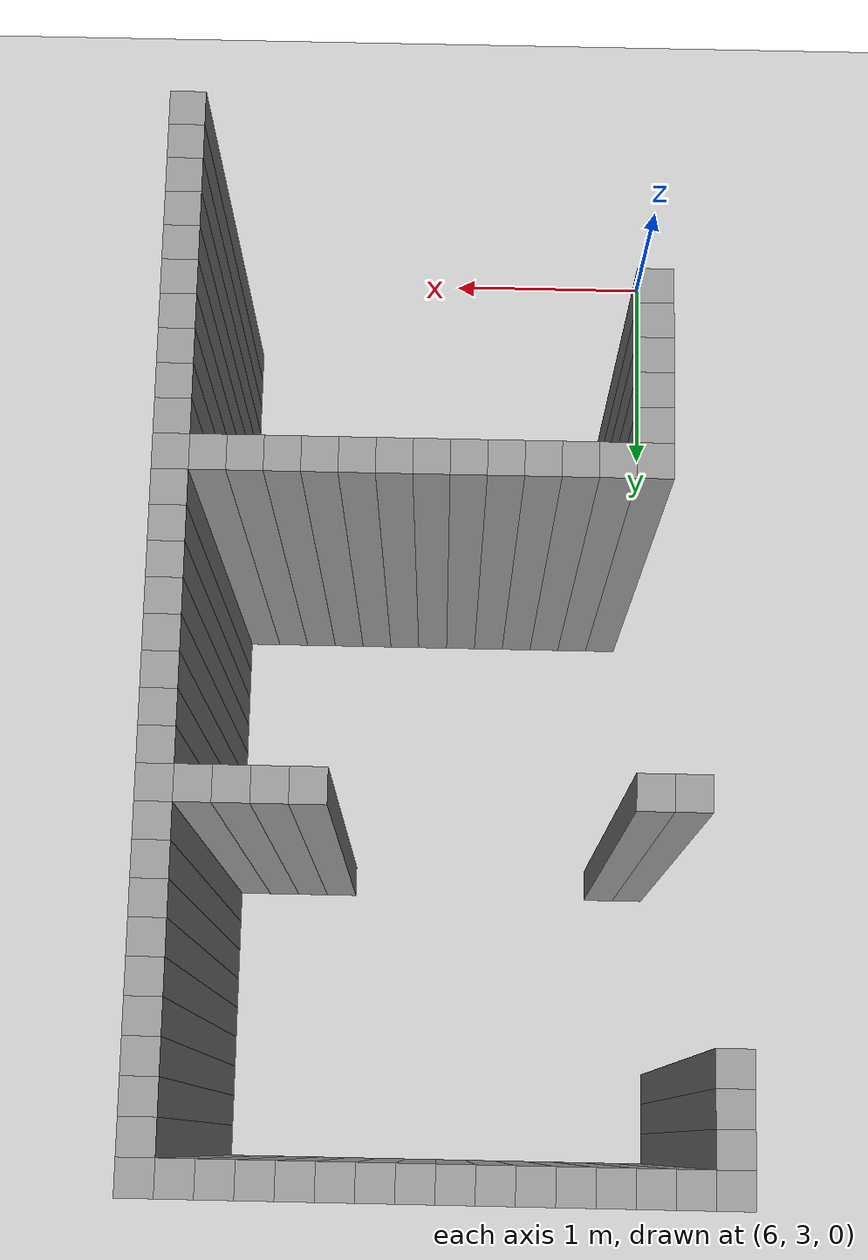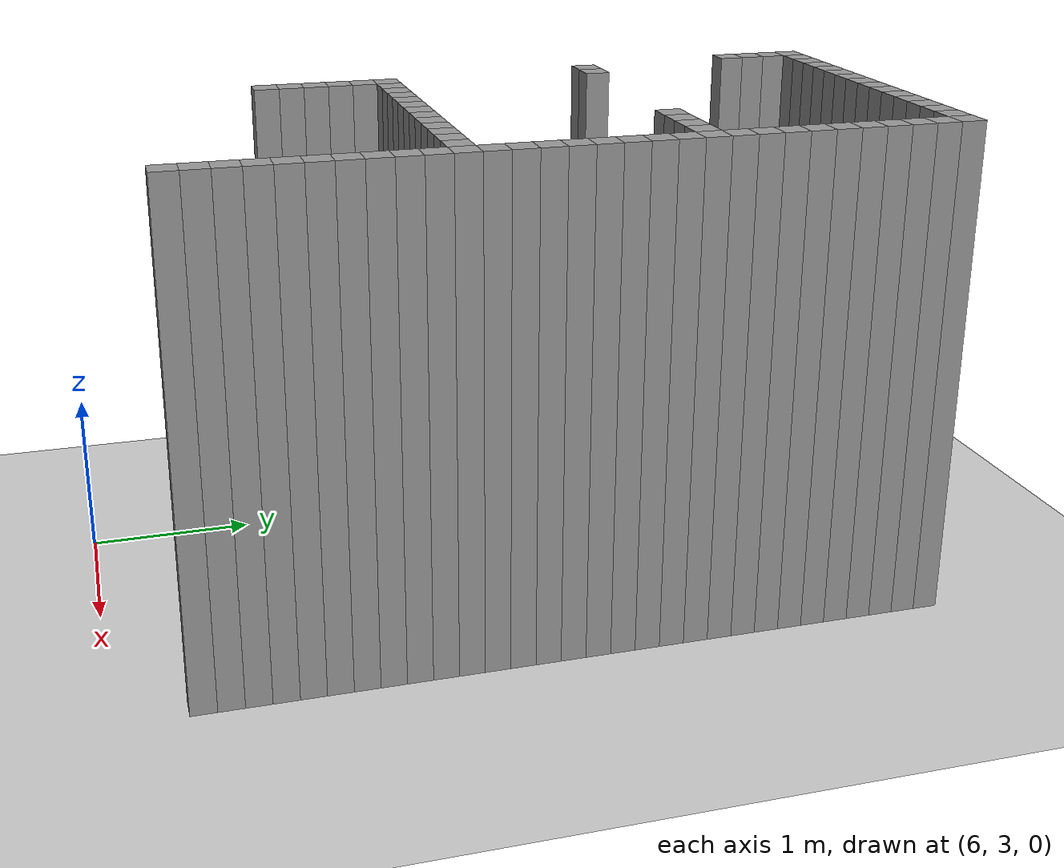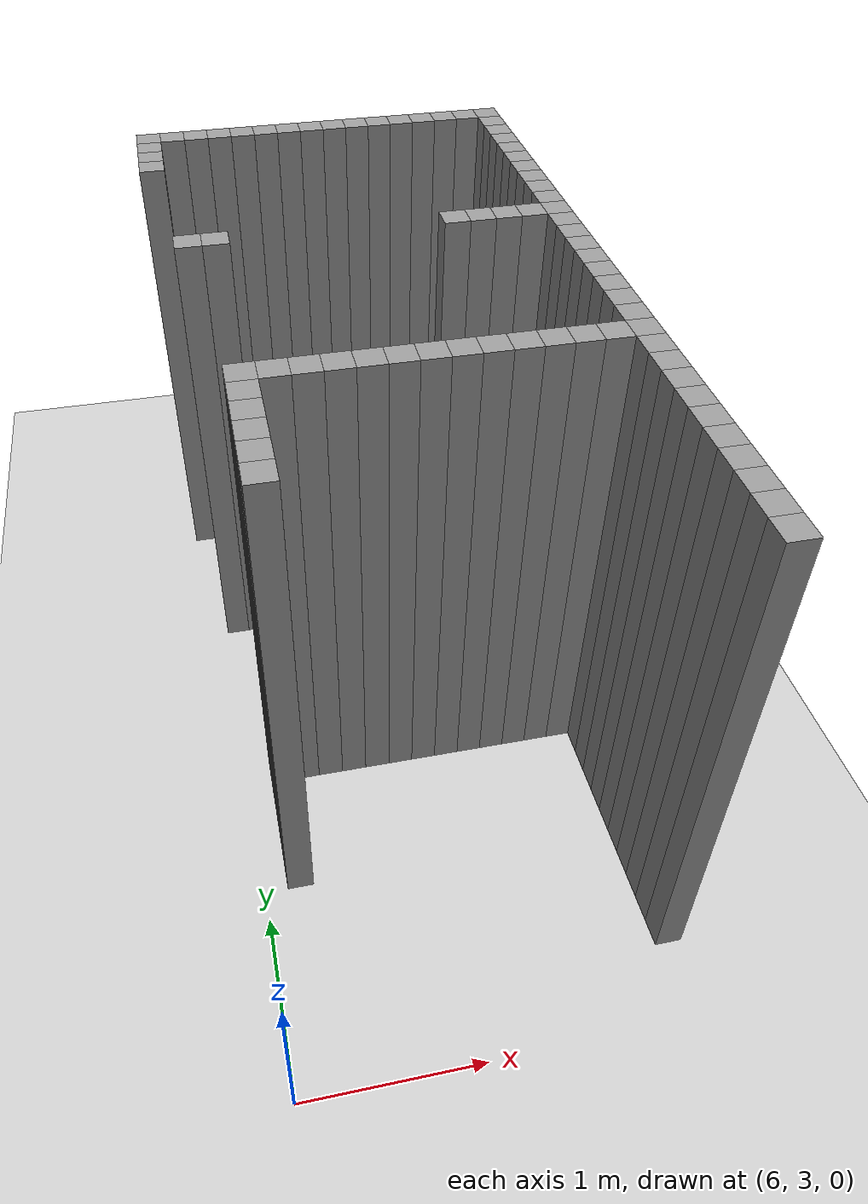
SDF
<sdf version="1.7">
 <world name="default">
  <model name="ground_plane">
   <static>1</static>
   <link name="link">
    <collision name="collision">
     <geometry><plane><normal>0 0 1</normal><size>100 100</size></plane></geometry>
     <surface>
      <contact><collide_bitmask>65535</collide_bitmask></contact>
      <friction><ode><mu>100</mu><mu2>50</mu2></ode></friction>
     </surface>
    </collision>
    <visual name="visual">
     <cast_shadows>0</cast_shadows>
     <geometry><plane><normal>0 0 1</normal><size>100 100</size></plane></geometry>
     <material>
      <script><uri>file://media/materials/scripts/gazebo.material</uri><name>Gazebo/Grey</name></script>
     </material>
    </visual>
   </link>
  </model>
  <model name="image45001">
   <pose>-1 -1 0 0 -0 0</pose>
   <link name="Wall_361">
    <collision name="Wall_361_Collision">
     <geometry><box><size>0.15 0.15 3</size></box></geometry>
     <pose>0 0 1.5 0 -0 0</pose>
    </collision>
    <visual name="Wall_361_Visual">
     <pose>0 0 1.5 0 -0 0</pose>
     <geometry><box><size>0.15 0.15 3</size></box></geometry>
     <material>
      <script><uri>file://media/materials/scripts/gazebo.material</uri><name>Gazebo/Grey</name></script>
      <ambient>1 1 1 1</ambient>
     </material>
     <meta><layer>0</layer></meta>
    </visual>
    <pose>6.8999999999999995 8.4 0 0 -0 0</pose>
   </link>
   <link name="Wall_362">
    <collision name="Wall_362_Collision">
     <geometry><box><size>0.15 0.15 3</size></box></geometry>
     <pose>0 0 1.5 0 -0 0</pose>
    </collision>
    <visual name="Wall_362_Visual">
     <pose>0 0 1.5 0 -0 0</pose>
     <geometry><box><size>0.15 0.15 3</size></box></geometry>
     <material>
      <script><uri>file://media/materials/scripts/gazebo.material</uri><name>Gazebo/Grey</name></script>
      <ambient>1 1 1 1</ambient>
     </material>
     <meta><layer>0</layer></meta>
    </visual>
    <pose>6.8999999999999995 8.549999999999999 0 0 -0 0</pose>
   </link>
   <link name="Wall_363">
    <collision name="Wall_363_Collision">
     <geometry><box><size>0.15 0.15 3</size></box></geometry>
     <pose>0 0 1.5 0 -0 0</pose>
    </collision>
    <visual name="Wall_363_Visual">
     <pose>0 0 1.5 0 -0 0</pose>
     <geometry><box><size>0.15 0.15 3</size></box></geometry>
     <material>
      <script><uri>file://media/materials/scripts/gazebo.material</uri><name>Gazebo/Grey</name></script>
      <ambient>1 1 1 1</ambient>
     </material>
     <meta><layer>0</layer></meta>
    </visual>
    <pose>6.8999999999999995 8.7 0 0 -0 0</pose>
   </link>
   <link name="Wall_364">
    <collision name="Wall_364_Collision">
     <geometry><box><size>0.15 0.15 3</size></box></geometry>
     <pose>0 0 1.5 0 -0 0</pose>
    </collision>
    <visual name="Wall_364_Visual">
     <pose>0 0 1.5 0 -0 0</pose>
     <geometry><box><size>0.15 0.15 3</size></box></geometry>
     <material>
      <script><uri>file://media/materials/scripts/gazebo.material</uri><name>Gazebo/Grey</name></script>
      <ambient>1 1 1 1</ambient>
     </material>
     <meta><layer>0</layer></meta>
    </visual>
    <pose>6.8999999999999995 8.85 0 0 -0 0</pose>
   </link>
   <link name="Wall_366">
    <collision name="Wall_366_Collision">
     <geometry><box><size>0.15 0.15 3</size></box></geometry>
     <pose>0 0 1.5 0 -0 0</pose>
    </collision>
    <visual name="Wall_366_Visual">
     <pose>0 0 1.5 0 -0 0</pose>
     <geometry><box><size>0.15 0.15 3</size></box></geometry>
     <material>
      <script><uri>file://media/materials/scripts/gazebo.material</uri><name>Gazebo/Grey</name></script>
      <ambient>1 1 1 1</ambient>
     </material>
     <meta><layer>0</layer></meta>
    </visual>
    <pose>7.05 7.35 0 0 -0 0</pose>
   </link>
   <link name="Wall_367">
    <collision name="Wall_367_Collision">
     <geometry><box><size>0.15 0.15 3</size></box></geometry>
     <pose>0 0 1.5 0 -0 0</pose>
    </collision>
    <visual name="Wall_367_Visual">
     <pose>0 0 1.5 0 -0 0</pose>
     <geometry><box><size>0.15 0.15 3</size></box></geometry>
     <material>
      <script><uri>file://media/materials/scripts/gazebo.material</uri><name>Gazebo/Grey</name></script>
      <ambient>1 1 1 1</ambient>
     </material>
     <meta><layer>0</layer></meta>
    </visual>
    <pose>7.05 8.85 0 0 -0 0</pose>
   </link>
   <link name="Wall_373">
    <collision name="Wall_373_Collision">
     <geometry><box><size>0.15 0.15 3</size></box></geometry>
     <pose>0 0 1.5 0 -0 0</pose>
    </collision>
    <visual name="Wall_373_Visual">
     <pose>0 0 1.5 0 -0 0</pose>
     <geometry><box><size>0.15 0.15 3</size></box></geometry>
     <material>
      <script><uri>file://media/materials/scripts/gazebo.material</uri><name>Gazebo/Grey</name></script>
      <ambient>1 1 1 1</ambient>
     </material>
     <meta><layer>0</layer></meta>
    </visual>
    <pose>7.199999999999999 5.25 0 0 -0 0</pose>
   </link>
   <link name="Wall_374">
    <collision name="Wall_374_Collision">
     <geometry><box><size>0.15 0.15 3</size></box></geometry>
     <pose>0 0 1.5 0 -0 0</pose>
    </collision>
    <visual name="Wall_374_Visual">
     <pose>0 0 1.5 0 -0 0</pose>
     <geometry><box><size>0.15 0.15 3</size></box></geometry>
     <material>
      <script><uri>file://media/materials/scripts/gazebo.material</uri><name>Gazebo/Grey</name></script>
      <ambient>1 1 1 1</ambient>
     </material>
     <meta><layer>0</layer></meta>
    </visual>
    <pose>7.199999999999999 5.3999999999999995 0 0 -0 0</pose>
   </link>
   <link name="Wall_375">
    <collision name="Wall_375_Collision">
     <geometry><box><size>0.15 0.15 3</size></box></geometry>
     <pose>0 0 1.5 0 -0 0</pose>
    </collision>
    <visual name="Wall_375_Visual">
     <pose>0 0 1.5 0 -0 0</pose>
     <geometry><box><size>0.15 0.15 3</size></box></geometry>
     <material>
      <script><uri>file://media/materials/scripts/gazebo.material</uri><name>Gazebo/Grey</name></script>
      <ambient>1 1 1 1</ambient>
     </material>
     <meta><layer>0</layer></meta>
    </visual>
    <pose>7.199999999999999 5.55 0 0 -0 0</pose>
   </link>
   <link name="Wall_376">
    <collision name="Wall_376_Collision">
     <geometry><box><size>0.15 0.15 3</size></box></geometry>
     <pose>0 0 1.5 0 -0 0</pose>
    </collision>
    <visual name="Wall_376_Visual">
     <pose>0 0 1.5 0 -0 0</pose>
     <geometry><box><size>0.15 0.15 3</size></box></geometry>
     <material>
      <script><uri>file://media/materials/scripts/gazebo.material</uri><name>Gazebo/Grey</name></script>
      <ambient>1 1 1 1</ambient>
     </material>
     <meta><layer>0</layer></meta>
    </visual>
    <pose>7.199999999999999 5.7 0 0 -0 0</pose>
   </link>
   <link name="Wall_377">
    <collision name="Wall_377_Collision">
     <geometry><box><size>0.15 0.15 3</size></box></geometry>
     <pose>0 0 1.5 0 -0 0</pose>
    </collision>
    <visual name="Wall_377_Visual">
     <pose>0 0 1.5 0 -0 0</pose>
     <geometry><box><size>0.15 0.15 3</size></box></geometry>
     <material>
      <script><uri>file://media/materials/scripts/gazebo.material</uri><name>Gazebo/Grey</name></script>
      <ambient>1 1 1 1</ambient>
     </material>
     <meta><layer>0</layer></meta>
    </visual>
    <pose>7.199999999999999 5.85 0 0 -0 0</pose>
   </link>
   <link name="Wall_378">
    <collision name="Wall_378_Collision">
     <geometry><box><size>0.15 0.15 3</size></box></geometry>
     <pose>0 0 1.5 0 -0 0</pose>
    </collision>
    <visual name="Wall_378_Visual">
     <pose>0 0 1.5 0 -0 0</pose>
     <geometry><box><size>0.15 0.15 3</size></box></geometry>
     <material>
      <script><uri>file://media/materials/scripts/gazebo.material</uri><name>Gazebo/Grey</name></script>
      <ambient>1 1 1 1</ambient>
     </material>
     <meta><layer>0</layer></meta>
    </visual>
    <pose>7.199999999999999 6.0 0 0 -0 0</pose>
   </link>
   <link name="Wall_379">
    <collision name="Wall_379_Collision">
     <geometry><box><size>0.15 0.15 3</size></box></geometry>
     <pose>0 0 1.5 0 -0 0</pose>
    </collision>
    <visual name="Wall_379_Visual">
     <pose>0 0 1.5 0 -0 0</pose>
     <geometry><box><size>0.15 0.15 3</size></box></geometry>
     <material>
      <script><uri>file://media/materials/scripts/gazebo.material</uri><name>Gazebo/Grey</name></script>
      <ambient>1 1 1 1</ambient>
     </material>
     <meta><layer>0</layer></meta>
    </visual>
    <pose>7.199999999999999 7.35 0 0 -0 0</pose>
   </link>
   <link name="Wall_380">
    <collision name="Wall_380_Collision">
     <geometry><box><size>0.15 0.15 3</size></box></geometry>
     <pose>0 0 1.5 0 -0 0</pose>
    </collision>
    <visual name="Wall_380_Visual">
     <pose>0 0 1.5 0 -0 0</pose>
     <geometry><box><size>0.15 0.15 3</size></box></geometry>
     <material>
      <script><uri>file://media/materials/scripts/gazebo.material</uri><name>Gazebo/Grey</name></script>
      <ambient>1 1 1 1</ambient>
     </material>
     <meta><layer>0</layer></meta>
    </visual>
    <pose>7.199999999999999 8.85 0 0 -0 0</pose>
   </link>
   <link name="Wall_383">
    <collision name="Wall_383_Collision">
     <geometry><box><size>0.15 0.15 3</size></box></geometry>
     <pose>0 0 1.5 0 -0 0</pose>
    </collision>
    <visual name="Wall_383_Visual">
     <pose>0 0 1.5 0 -0 0</pose>
     <geometry><box><size>0.15 0.15 3</size></box></geometry>
     <material>
      <script><uri>file://media/materials/scripts/gazebo.material</uri><name>Gazebo/Grey</name></script>
      <ambient>1 1 1 1</ambient>
     </material>
     <meta><layer>0</layer></meta>
    </visual>
    <pose>7.35 6.0 0 0 -0 0</pose>
   </link>
   <link name="Wall_384">
    <collision name="Wall_384_Collision">
     <geometry><box><size>0.15 0.15 3</size></box></geometry>
     <pose>0 0 1.5 0 -0 0</pose>
    </collision>
    <visual name="Wall_384_Visual">
     <pose>0 0 1.5 0 -0 0</pose>
     <geometry><box><size>0.15 0.15 3</size></box></geometry>
     <material>
      <script><uri>file://media/materials/scripts/gazebo.material</uri><name>Gazebo/Grey</name></script>
      <ambient>1 1 1 1</ambient>
     </material>
     <meta><layer>0</layer></meta>
    </visual>
    <pose>7.35 8.85 0 0 -0 0</pose>
   </link>
   <link name="Wall_387">
    <collision name="Wall_387_Collision">
     <geometry><box><size>0.15 0.15 3</size></box></geometry>
     <pose>0 0 1.5 0 -0 0</pose>
    </collision>
    <visual name="Wall_387_Visual">
     <pose>0 0 1.5 0 -0 0</pose>
     <geometry><box><size>0.15 0.15 3</size></box></geometry>
     <material>
      <script><uri>file://media/materials/scripts/gazebo.material</uri><name>Gazebo/Grey</name></script>
      <ambient>1 1 1 1</ambient>
     </material>
     <meta><layer>0</layer></meta>
    </visual>
    <pose>7.5 6.0 0 0 -0 0</pose>
   </link>
   <link name="Wall_388">
    <collision name="Wall_388_Collision">
     <geometry><box><size>0.15 0.15 3</size></box></geometry>
     <pose>0 0 1.5 0 -0 0</pose>
    </collision>
    <visual name="Wall_388_Visual">
     <pose>0 0 1.5 0 -0 0</pose>
     <geometry><box><size>0.15 0.15 3</size></box></geometry>
     <material>
      <script><uri>file://media/materials/scripts/gazebo.material</uri><name>Gazebo/Grey</name></script>
      <ambient>1 1 1 1</ambient>
     </material>
     <meta><layer>0</layer></meta>
    </visual>
    <pose>7.5 8.85 0 0 -0 0</pose>
   </link>
   <link name="Wall_391">
    <collision name="Wall_391_Collision">
     <geometry><box><size>0.15 0.15 3</size></box></geometry>
     <pose>0 0 1.5 0 -0 0</pose>
    </collision>
    <visual name="Wall_391_Visual">
     <pose>0 0 1.5 0 -0 0</pose>
     <geometry><box><size>0.15 0.15 3</size></box></geometry>
     <material>
      <script><uri>file://media/materials/scripts/gazebo.material</uri><name>Gazebo/Grey</name></script>
      <ambient>1 1 1 1</ambient>
     </material>
     <meta><layer>0</layer></meta>
    </visual>
    <pose>7.6499999999999995 6.0 0 0 -0 0</pose>
   </link>
   <link name="Wall_392">
    <collision name="Wall_392_Collision">
     <geometry><box><size>0.15 0.15 3</size></box></geometry>
     <pose>0 0 1.5 0 -0 0</pose>
    </collision>
    <visual name="Wall_392_Visual">
     <pose>0 0 1.5 0 -0 0</pose>
     <geometry><box><size>0.15 0.15 3</size></box></geometry>
     <material>
      <script><uri>file://media/materials/scripts/gazebo.material</uri><name>Gazebo/Grey</name></script>
      <ambient>1 1 1 1</ambient>
     </material>
     <meta><layer>0</layer></meta>
    </visual>
    <pose>7.6499999999999995 8.85 0 0 -0 0</pose>
   </link>
   <link name="Wall_396">
    <collision name="Wall_396_Collision">
     <geometry><box><size>0.15 0.15 3</size></box></geometry>
     <pose>0 0 1.5 0 -0 0</pose>
    </collision>
    <visual name="Wall_396_Visual">
     <pose>0 0 1.5 0 -0 0</pose>
     <geometry><box><size>0.15 0.15 3</size></box></geometry>
     <material>
      <script><uri>file://media/materials/scripts/gazebo.material</uri><name>Gazebo/Grey</name></script>
      <ambient>1 1 1 1</ambient>
     </material>
     <meta><layer>0</layer></meta>
    </visual>
    <pose>7.8 6.0 0 0 -0 0</pose>
   </link>
   <link name="Wall_397">
    <collision name="Wall_397_Collision">
     <geometry><box><size>0.15 0.15 3</size></box></geometry>
     <pose>0 0 1.5 0 -0 0</pose>
    </collision>
    <visual name="Wall_397_Visual">
     <pose>0 0 1.5 0 -0 0</pose>
     <geometry><box><size>0.15 0.15 3</size></box></geometry>
     <material>
      <script><uri>file://media/materials/scripts/gazebo.material</uri><name>Gazebo/Grey</name></script>
      <ambient>1 1 1 1</ambient>
     </material>
     <meta><layer>0</layer></meta>
    </visual>
    <pose>7.8 8.85 0 0 -0 0</pose>
   </link>
   <link name="Wall_401">
    <collision name="Wall_401_Collision">
     <geometry><box><size>0.15 0.15 3</size></box></geometry>
     <pose>0 0 1.5 0 -0 0</pose>
    </collision>
    <visual name="Wall_401_Visual">
     <pose>0 0 1.5 0 -0 0</pose>
     <geometry><box><size>0.15 0.15 3</size></box></geometry>
     <material>
      <script><uri>file://media/materials/scripts/gazebo.material</uri><name>Gazebo/Grey</name></script>
      <ambient>1 1 1 1</ambient>
     </material>
     <meta><layer>0</layer></meta>
    </visual>
    <pose>7.949999999999999 6.0 0 0 -0 0</pose>
   </link>
   <link name="Wall_402">
    <collision name="Wall_402_Collision">
     <geometry><box><size>0.15 0.15 3</size></box></geometry>
     <pose>0 0 1.5 0 -0 0</pose>
    </collision>
    <visual name="Wall_402_Visual">
     <pose>0 0 1.5 0 -0 0</pose>
     <geometry><box><size>0.15 0.15 3</size></box></geometry>
     <material>
      <script><uri>file://media/materials/scripts/gazebo.material</uri><name>Gazebo/Grey</name></script>
      <ambient>1 1 1 1</ambient>
     </material>
     <meta><layer>0</layer></meta>
    </visual>
    <pose>7.949999999999999 8.85 0 0 -0 0</pose>
   </link>
   <link name="Wall_406">
    <collision name="Wall_406_Collision">
     <geometry><box><size>0.15 0.15 3</size></box></geometry>
     <pose>0 0 1.5 0 -0 0</pose>
    </collision>
    <visual name="Wall_406_Visual">
     <pose>0 0 1.5 0 -0 0</pose>
     <geometry><box><size>0.15 0.15 3</size></box></geometry>
     <material>
      <script><uri>file://media/materials/scripts/gazebo.material</uri><name>Gazebo/Grey</name></script>
      <ambient>1 1 1 1</ambient>
     </material>
     <meta><layer>0</layer></meta>
    </visual>
    <pose>8.1 6.0 0 0 -0 0</pose>
   </link>
   <link name="Wall_407">
    <collision name="Wall_407_Collision">
     <geometry><box><size>0.15 0.15 3</size></box></geometry>
     <pose>0 0 1.5 0 -0 0</pose>
    </collision>
    <visual name="Wall_407_Visual">
     <pose>0 0 1.5 0 -0 0</pose>
     <geometry><box><size>0.15 0.15 3</size></box></geometry>
     <material>
      <script><uri>file://media/materials/scripts/gazebo.material</uri><name>Gazebo/Grey</name></script>
      <ambient>1 1 1 1</ambient>
     </material>
     <meta><layer>0</layer></meta>
    </visual>
    <pose>8.1 8.85 0 0 -0 0</pose>
   </link>
   <link name="Wall_411">
    <collision name="Wall_411_Collision">
     <geometry><box><size>0.15 0.15 3</size></box></geometry>
     <pose>0 0 1.5 0 -0 0</pose>
    </collision>
    <visual name="Wall_411_Visual">
     <pose>0 0 1.5 0 -0 0</pose>
     <geometry><box><size>0.15 0.15 3</size></box></geometry>
     <material>
      <script><uri>file://media/materials/scripts/gazebo.material</uri><name>Gazebo/Grey</name></script>
      <ambient>1 1 1 1</ambient>
     </material>
     <meta><layer>0</layer></meta>
    </visual>
    <pose>8.25 6.0 0 0 -0 0</pose>
   </link>
   <link name="Wall_412">
    <collision name="Wall_412_Collision">
     <geometry><box><size>0.15 0.15 3</size></box></geometry>
     <pose>0 0 1.5 0 -0 0</pose>
    </collision>
    <visual name="Wall_412_Visual">
     <pose>0 0 1.5 0 -0 0</pose>
     <geometry><box><size>0.15 0.15 3</size></box></geometry>
     <material>
      <script><uri>file://media/materials/scripts/gazebo.material</uri><name>Gazebo/Grey</name></script>
      <ambient>1 1 1 1</ambient>
     </material>
     <meta><layer>0</layer></meta>
    </visual>
    <pose>8.25 8.85 0 0 -0 0</pose>
   </link>
   <link name="Wall_416">
    <collision name="Wall_416_Collision">
     <geometry><box><size>0.15 0.15 3</size></box></geometry>
     <pose>0 0 1.5 0 -0 0</pose>
    </collision>
    <visual name="Wall_416_Visual">
     <pose>0 0 1.5 0 -0 0</pose>
     <geometry><box><size>0.15 0.15 3</size></box></geometry>
     <material>
      <script><uri>file://media/materials/scripts/gazebo.material</uri><name>Gazebo/Grey</name></script>
      <ambient>1 1 1 1</ambient>
     </material>
     <meta><layer>0</layer></meta>
    </visual>
    <pose>8.4 6.0 0 0 -0 0</pose>
   </link>
   <link name="Wall_417">
    <collision name="Wall_417_Collision">
     <geometry><box><size>0.15 0.15 3</size></box></geometry>
     <pose>0 0 1.5 0 -0 0</pose>
    </collision>
    <visual name="Wall_417_Visual">
     <pose>0 0 1.5 0 -0 0</pose>
     <geometry><box><size>0.15 0.15 3</size></box></geometry>
     <material>
      <script><uri>file://media/materials/scripts/gazebo.material</uri><name>Gazebo/Grey</name></script>
      <ambient>1 1 1 1</ambient>
     </material>
     <meta><layer>0</layer></meta>
    </visual>
    <pose>8.4 8.85 0 0 -0 0</pose>
   </link>
   <link name="Wall_421">
    <collision name="Wall_421_Collision">
     <geometry><box><size>0.15 0.15 3</size></box></geometry>
     <pose>0 0 1.5 0 -0 0</pose>
    </collision>
    <visual name="Wall_421_Visual">
     <pose>0 0 1.5 0 -0 0</pose>
     <geometry><box><size>0.15 0.15 3</size></box></geometry>
     <material>
      <script><uri>file://media/materials/scripts/gazebo.material</uri><name>Gazebo/Grey</name></script>
      <ambient>1 1 1 1</ambient>
     </material>
     <meta><layer>0</layer></meta>
    </visual>
    <pose>8.549999999999999 6.0 0 0 -0 0</pose>
   </link>
   <link name="Wall_422">
    <collision name="Wall_422_Collision">
     <geometry><box><size>0.15 0.15 3</size></box></geometry>
     <pose>0 0 1.5 0 -0 0</pose>
    </collision>
    <visual name="Wall_422_Visual">
     <pose>0 0 1.5 0 -0 0</pose>
     <geometry><box><size>0.15 0.15 3</size></box></geometry>
     <material>
      <script><uri>file://media/materials/scripts/gazebo.material</uri><name>Gazebo/Grey</name></script>
      <ambient>1 1 1 1</ambient>
     </material>
     <meta><layer>0</layer></meta>
    </visual>
    <pose>8.549999999999999 7.35 0 0 -0 0</pose>
   </link>
   <link name="Wall_423">
    <collision name="Wall_423_Collision">
     <geometry><box><size>0.15 0.15 3</size></box></geometry>
     <pose>0 0 1.5 0 -0 0</pose>
    </collision>
    <visual name="Wall_423_Visual">
     <pose>0 0 1.5 0 -0 0</pose>
     <geometry><box><size>0.15 0.15 3</size></box></geometry>
     <material>
      <script><uri>file://media/materials/scripts/gazebo.material</uri><name>Gazebo/Grey</name></script>
      <ambient>1 1 1 1</ambient>
     </material>
     <meta><layer>0</layer></meta>
    </visual>
    <pose>8.549999999999999 8.85 0 0 -0 0</pose>
   </link>
   <link name="Wall_427">
    <collision name="Wall_427_Collision">
     <geometry><box><size>0.15 0.15 3</size></box></geometry>
     <pose>0 0 1.5 0 -0 0</pose>
    </collision>
    <visual name="Wall_427_Visual">
     <pose>0 0 1.5 0 -0 0</pose>
     <geometry><box><size>0.15 0.15 3</size></box></geometry>
     <material>
      <script><uri>file://media/materials/scripts/gazebo.material</uri><name>Gazebo/Grey</name></script>
      <ambient>1 1 1 1</ambient>
     </material>
     <meta><layer>0</layer></meta>
    </visual>
    <pose>8.7 6.0 0 0 -0 0</pose>
   </link>
   <link name="Wall_428">
    <collision name="Wall_428_Collision">
     <geometry><box><size>0.15 0.15 3</size></box></geometry>
     <pose>0 0 1.5 0 -0 0</pose>
    </collision>
    <visual name="Wall_428_Visual">
     <pose>0 0 1.5 0 -0 0</pose>
     <geometry><box><size>0.15 0.15 3</size></box></geometry>
     <material>
      <script><uri>file://media/materials/scripts/gazebo.material</uri><name>Gazebo/Grey</name></script>
      <ambient>1 1 1 1</ambient>
     </material>
     <meta><layer>0</layer></meta>
    </visual>
    <pose>8.7 7.35 0 0 -0 0</pose>
   </link>
   <link name="Wall_429">
    <collision name="Wall_429_Collision">
     <geometry><box><size>0.15 0.15 3</size></box></geometry>
     <pose>0 0 1.5 0 -0 0</pose>
    </collision>
    <visual name="Wall_429_Visual">
     <pose>0 0 1.5 0 -0 0</pose>
     <geometry><box><size>0.15 0.15 3</size></box></geometry>
     <material>
      <script><uri>file://media/materials/scripts/gazebo.material</uri><name>Gazebo/Grey</name></script>
      <ambient>1 1 1 1</ambient>
     </material>
     <meta><layer>0</layer></meta>
    </visual>
    <pose>8.7 8.85 0 0 -0 0</pose>
   </link>
   <link name="Wall_433">
    <collision name="Wall_433_Collision">
     <geometry><box><size>0.15 0.15 3</size></box></geometry>
     <pose>0 0 1.5 0 -0 0</pose>
    </collision>
    <visual name="Wall_433_Visual">
     <pose>0 0 1.5 0 -0 0</pose>
     <geometry><box><size>0.15 0.15 3</size></box></geometry>
     <material>
      <script><uri>file://media/materials/scripts/gazebo.material</uri><name>Gazebo/Grey</name></script>
      <ambient>1 1 1 1</ambient>
     </material>
     <meta><layer>0</layer></meta>
    </visual>
    <pose>8.85 6.0 0 0 -0 0</pose>
   </link>
   <link name="Wall_434">
    <collision name="Wall_434_Collision">
     <geometry><box><size>0.15 0.15 3</size></box></geometry>
     <pose>0 0 1.5 0 -0 0</pose>
    </collision>
    <visual name="Wall_434_Visual">
     <pose>0 0 1.5 0 -0 0</pose>
     <geometry><box><size>0.15 0.15 3</size></box></geometry>
     <material>
      <script><uri>file://media/materials/scripts/gazebo.material</uri><name>Gazebo/Grey</name></script>
      <ambient>1 1 1 1</ambient>
     </material>
     <meta><layer>0</layer></meta>
    </visual>
    <pose>8.85 7.35 0 0 -0 0</pose>
   </link>
   <link name="Wall_435">
    <collision name="Wall_435_Collision">
     <geometry><box><size>0.15 0.15 3</size></box></geometry>
     <pose>0 0 1.5 0 -0 0</pose>
    </collision>
    <visual name="Wall_435_Visual">
     <pose>0 0 1.5 0 -0 0</pose>
     <geometry><box><size>0.15 0.15 3</size></box></geometry>
     <material>
      <script><uri>file://media/materials/scripts/gazebo.material</uri><name>Gazebo/Grey</name></script>
      <ambient>1 1 1 1</ambient>
     </material>
     <meta><layer>0</layer></meta>
    </visual>
    <pose>8.85 8.85 0 0 -0 0</pose>
   </link>
   <link name="Wall_439">
    <collision name="Wall_439_Collision">
     <geometry><box><size>0.15 0.15 3</size></box></geometry>
     <pose>0 0 1.5 0 -0 0</pose>
    </collision>
    <visual name="Wall_439_Visual">
     <pose>0 0 1.5 0 -0 0</pose>
     <geometry><box><size>0.15 0.15 3</size></box></geometry>
     <material>
      <script><uri>file://media/materials/scripts/gazebo.material</uri><name>Gazebo/Grey</name></script>
      <ambient>1 1 1 1</ambient>
     </material>
     <meta><layer>0</layer></meta>
    </visual>
    <pose>9.0 6.0 0 0 -0 0</pose>
   </link>
   <link name="Wall_440">
    <collision name="Wall_440_Collision">
     <geometry><box><size>0.15 0.15 3</size></box></geometry>
     <pose>0 0 1.5 0 -0 0</pose>
    </collision>
    <visual name="Wall_440_Visual">
     <pose>0 0 1.5 0 -0 0</pose>
     <geometry><box><size>0.15 0.15 3</size></box></geometry>
     <material>
      <script><uri>file://media/materials/scripts/gazebo.material</uri><name>Gazebo/Grey</name></script>
      <ambient>1 1 1 1</ambient>
     </material>
     <meta><layer>0</layer></meta>
    </visual>
    <pose>9.0 7.35 0 0 -0 0</pose>
   </link>
   <link name="Wall_441">
    <collision name="Wall_441_Collision">
     <geometry><box><size>0.15 0.15 3</size></box></geometry>
     <pose>0 0 1.5 0 -0 0</pose>
    </collision>
    <visual name="Wall_441_Visual">
     <pose>0 0 1.5 0 -0 0</pose>
     <geometry><box><size>0.15 0.15 3</size></box></geometry>
     <material>
      <script><uri>file://media/materials/scripts/gazebo.material</uri><name>Gazebo/Grey</name></script>
      <ambient>1 1 1 1</ambient>
     </material>
     <meta><layer>0</layer></meta>
    </visual>
    <pose>9.0 8.85 0 0 -0 0</pose>
   </link>
   <link name="Wall_472">
    <collision name="Wall_472_Collision">
     <geometry><box><size>0.15 0.15 3</size></box></geometry>
     <pose>0 0 1.5 0 -0 0</pose>
    </collision>
    <visual name="Wall_472_Visual">
     <pose>0 0 1.5 0 -0 0</pose>
     <geometry><box><size>0.15 0.15 3</size></box></geometry>
     <material>
      <script><uri>file://media/materials/scripts/gazebo.material</uri><name>Gazebo/Grey</name></script>
      <ambient>1 1 1 1</ambient>
     </material>
     <meta><layer>0</layer></meta>
    </visual>
    <pose>9.15 4.5 0 0 -0 0</pose>
   </link>
   <link name="Wall_473">
    <collision name="Wall_473_Collision">
     <geometry><box><size>0.15 0.15 3</size></box></geometry>
     <pose>0 0 1.5 0 -0 0</pose>
    </collision>
    <visual name="Wall_473_Visual">
     <pose>0 0 1.5 0 -0 0</pose>
     <geometry><box><size>0.15 0.15 3</size></box></geometry>
     <material>
      <script><uri>file://media/materials/scripts/gazebo.material</uri><name>Gazebo/Grey</name></script>
      <ambient>1 1 1 1</ambient>
     </material>
     <meta><layer>0</layer></meta>
    </visual>
    <pose>9.15 4.6499999999999995 0 0 -0 0</pose>
   </link>
   <link name="Wall_474">
    <collision name="Wall_474_Collision">
     <geometry><box><size>0.15 0.15 3</size></box></geometry>
     <pose>0 0 1.5 0 -0 0</pose>
    </collision>
    <visual name="Wall_474_Visual">
     <pose>0 0 1.5 0 -0 0</pose>
     <geometry><box><size>0.15 0.15 3</size></box></geometry>
     <material>
      <script><uri>file://media/materials/scripts/gazebo.material</uri><name>Gazebo/Grey</name></script>
      <ambient>1 1 1 1</ambient>
     </material>
     <meta><layer>0</layer></meta>
    </visual>
    <pose>9.15 4.8 0 0 -0 0</pose>
   </link>
   <link name="Wall_475">
    <collision name="Wall_475_Collision">
     <geometry><box><size>0.15 0.15 3</size></box></geometry>
     <pose>0 0 1.5 0 -0 0</pose>
    </collision>
    <visual name="Wall_475_Visual">
     <pose>0 0 1.5 0 -0 0</pose>
     <geometry><box><size>0.15 0.15 3</size></box></geometry>
     <material>
      <script><uri>file://media/materials/scripts/gazebo.material</uri><name>Gazebo/Grey</name></script>
      <ambient>1 1 1 1</ambient>
     </material>
     <meta><layer>0</layer></meta>
    </visual>
    <pose>9.15 4.95 0 0 -0 0</pose>
   </link>
   <link name="Wall_476">
    <collision name="Wall_476_Collision">
     <geometry><box><size>0.15 0.15 3</size></box></geometry>
     <pose>0 0 1.5 0 -0 0</pose>
    </collision>
    <visual name="Wall_476_Visual">
     <pose>0 0 1.5 0 -0 0</pose>
     <geometry><box><size>0.15 0.15 3</size></box></geometry>
     <material>
      <script><uri>file://media/materials/scripts/gazebo.material</uri><name>Gazebo/Grey</name></script>
      <ambient>1 1 1 1</ambient>
     </material>
     <meta><layer>0</layer></meta>
    </visual>
    <pose>9.15 5.1 0 0 -0 0</pose>
   </link>
   <link name="Wall_477">
    <collision name="Wall_477_Collision">
     <geometry><box><size>0.15 0.15 3</size></box></geometry>
     <pose>0 0 1.5 0 -0 0</pose>
    </collision>
    <visual name="Wall_477_Visual">
     <pose>0 0 1.5 0 -0 0</pose>
     <geometry><box><size>0.15 0.15 3</size></box></geometry>
     <material>
      <script><uri>file://media/materials/scripts/gazebo.material</uri><name>Gazebo/Grey</name></script>
      <ambient>1 1 1 1</ambient>
     </material>
     <meta><layer>0</layer></meta>
    </visual>
    <pose>9.15 5.25 0 0 -0 0</pose>
   </link>
   <link name="Wall_478">
    <collision name="Wall_478_Collision">
     <geometry><box><size>0.15 0.15 3</size></box></geometry>
     <pose>0 0 1.5 0 -0 0</pose>
    </collision>
    <visual name="Wall_478_Visual">
     <pose>0 0 1.5 0 -0 0</pose>
     <geometry><box><size>0.15 0.15 3</size></box></geometry>
     <material>
      <script><uri>file://media/materials/scripts/gazebo.material</uri><name>Gazebo/Grey</name></script>
      <ambient>1 1 1 1</ambient>
     </material>
     <meta><layer>0</layer></meta>
    </visual>
    <pose>9.15 5.3999999999999995 0 0 -0 0</pose>
   </link>
   <link name="Wall_479">
    <collision name="Wall_479_Collision">
     <geometry><box><size>0.15 0.15 3</size></box></geometry>
     <pose>0 0 1.5 0 -0 0</pose>
    </collision>
    <visual name="Wall_479_Visual">
     <pose>0 0 1.5 0 -0 0</pose>
     <geometry><box><size>0.15 0.15 3</size></box></geometry>
     <material>
      <script><uri>file://media/materials/scripts/gazebo.material</uri><name>Gazebo/Grey</name></script>
      <ambient>1 1 1 1</ambient>
     </material>
     <meta><layer>0</layer></meta>
    </visual>
    <pose>9.15 5.55 0 0 -0 0</pose>
   </link>
   <link name="Wall_480">
    <collision name="Wall_480_Collision">
     <geometry><box><size>0.15 0.15 3</size></box></geometry>
     <pose>0 0 1.5 0 -0 0</pose>
    </collision>
    <visual name="Wall_480_Visual">
     <pose>0 0 1.5 0 -0 0</pose>
     <geometry><box><size>0.15 0.15 3</size></box></geometry>
     <material>
      <script><uri>file://media/materials/scripts/gazebo.material</uri><name>Gazebo/Grey</name></script>
      <ambient>1 1 1 1</ambient>
     </material>
     <meta><layer>0</layer></meta>
    </visual>
    <pose>9.15 5.7 0 0 -0 0</pose>
   </link>
   <link name="Wall_481">
    <collision name="Wall_481_Collision">
     <geometry><box><size>0.15 0.15 3</size></box></geometry>
     <pose>0 0 1.5 0 -0 0</pose>
    </collision>
    <visual name="Wall_481_Visual">
     <pose>0 0 1.5 0 -0 0</pose>
     <geometry><box><size>0.15 0.15 3</size></box></geometry>
     <material>
      <script><uri>file://media/materials/scripts/gazebo.material</uri><name>Gazebo/Grey</name></script>
      <ambient>1 1 1 1</ambient>
     </material>
     <meta><layer>0</layer></meta>
    </visual>
    <pose>9.15 5.85 0 0 -0 0</pose>
   </link>
   <link name="Wall_482">
    <collision name="Wall_482_Collision">
     <geometry><box><size>0.15 0.15 3</size></box></geometry>
     <pose>0 0 1.5 0 -0 0</pose>
    </collision>
    <visual name="Wall_482_Visual">
     <pose>0 0 1.5 0 -0 0</pose>
     <geometry><box><size>0.15 0.15 3</size></box></geometry>
     <material>
      <script><uri>file://media/materials/scripts/gazebo.material</uri><name>Gazebo/Grey</name></script>
      <ambient>1 1 1 1</ambient>
     </material>
     <meta><layer>0</layer></meta>
    </visual>
    <pose>9.15 6.0 0 0 -0 0</pose>
   </link>
   <link name="Wall_483">
    <collision name="Wall_483_Collision">
     <geometry><box><size>0.15 0.15 3</size></box></geometry>
     <pose>0 0 1.5 0 -0 0</pose>
    </collision>
    <visual name="Wall_483_Visual">
     <pose>0 0 1.5 0 -0 0</pose>
     <geometry><box><size>0.15 0.15 3</size></box></geometry>
     <material>
      <script><uri>file://media/materials/scripts/gazebo.material</uri><name>Gazebo/Grey</name></script>
      <ambient>1 1 1 1</ambient>
     </material>
     <meta><layer>0</layer></meta>
    </visual>
    <pose>9.15 6.1499999999999995 0 0 -0 0</pose>
   </link>
   <link name="Wall_484">
    <collision name="Wall_484_Collision">
     <geometry><box><size>0.15 0.15 3</size></box></geometry>
     <pose>0 0 1.5 0 -0 0</pose>
    </collision>
    <visual name="Wall_484_Visual">
     <pose>0 0 1.5 0 -0 0</pose>
     <geometry><box><size>0.15 0.15 3</size></box></geometry>
     <material>
      <script><uri>file://media/materials/scripts/gazebo.material</uri><name>Gazebo/Grey</name></script>
      <ambient>1 1 1 1</ambient>
     </material>
     <meta><layer>0</layer></meta>
    </visual>
    <pose>9.15 6.3 0 0 -0 0</pose>
   </link>
   <link name="Wall_485">
    <collision name="Wall_485_Collision">
     <geometry><box><size>0.15 0.15 3</size></box></geometry>
     <pose>0 0 1.5 0 -0 0</pose>
    </collision>
    <visual name="Wall_485_Visual">
     <pose>0 0 1.5 0 -0 0</pose>
     <geometry><box><size>0.15 0.15 3</size></box></geometry>
     <material>
      <script><uri>file://media/materials/scripts/gazebo.material</uri><name>Gazebo/Grey</name></script>
      <ambient>1 1 1 1</ambient>
     </material>
     <meta><layer>0</layer></meta>
    </visual>
    <pose>9.15 6.45 0 0 -0 0</pose>
   </link>
   <link name="Wall_486">
    <collision name="Wall_486_Collision">
     <geometry><box><size>0.15 0.15 3</size></box></geometry>
     <pose>0 0 1.5 0 -0 0</pose>
    </collision>
    <visual name="Wall_486_Visual">
     <pose>0 0 1.5 0 -0 0</pose>
     <geometry><box><size>0.15 0.15 3</size></box></geometry>
     <material>
      <script><uri>file://media/materials/scripts/gazebo.material</uri><name>Gazebo/Grey</name></script>
      <ambient>1 1 1 1</ambient>
     </material>
     <meta><layer>0</layer></meta>
    </visual>
    <pose>9.15 6.6 0 0 -0 0</pose>
   </link>
   <link name="Wall_487">
    <collision name="Wall_487_Collision">
     <geometry><box><size>0.15 0.15 3</size></box></geometry>
     <pose>0 0 1.5 0 -0 0</pose>
    </collision>
    <visual name="Wall_487_Visual">
     <pose>0 0 1.5 0 -0 0</pose>
     <geometry><box><size>0.15 0.15 3</size></box></geometry>
     <material>
      <script><uri>file://media/materials/scripts/gazebo.material</uri><name>Gazebo/Grey</name></script>
      <ambient>1 1 1 1</ambient>
     </material>
     <meta><layer>0</layer></meta>
    </visual>
    <pose>9.15 6.75 0 0 -0 0</pose>
   </link>
   <link name="Wall_488">
    <collision name="Wall_488_Collision">
     <geometry><box><size>0.15 0.15 3</size></box></geometry>
     <pose>0 0 1.5 0 -0 0</pose>
    </collision>
    <visual name="Wall_488_Visual">
     <pose>0 0 1.5 0 -0 0</pose>
     <geometry><box><size>0.15 0.15 3</size></box></geometry>
     <material>
      <script><uri>file://media/materials/scripts/gazebo.material</uri><name>Gazebo/Grey</name></script>
      <ambient>1 1 1 1</ambient>
     </material>
     <meta><layer>0</layer></meta>
    </visual>
    <pose>9.15 6.8999999999999995 0 0 -0 0</pose>
   </link>
   <link name="Wall_489">
    <collision name="Wall_489_Collision">
     <geometry><box><size>0.15 0.15 3</size></box></geometry>
     <pose>0 0 1.5 0 -0 0</pose>
    </collision>
    <visual name="Wall_489_Visual">
     <pose>0 0 1.5 0 -0 0</pose>
     <geometry><box><size>0.15 0.15 3</size></box></geometry>
     <material>
      <script><uri>file://media/materials/scripts/gazebo.material</uri><name>Gazebo/Grey</name></script>
      <ambient>1 1 1 1</ambient>
     </material>
     <meta><layer>0</layer></meta>
    </visual>
    <pose>9.15 7.05 0 0 -0 0</pose>
   </link>
   <link name="Wall_490">
    <collision name="Wall_490_Collision">
     <geometry><box><size>0.15 0.15 3</size></box></geometry>
     <pose>0 0 1.5 0 -0 0</pose>
    </collision>
    <visual name="Wall_490_Visual">
     <pose>0 0 1.5 0 -0 0</pose>
     <geometry><box><size>0.15 0.15 3</size></box></geometry>
     <material>
      <script><uri>file://media/materials/scripts/gazebo.material</uri><name>Gazebo/Grey</name></script>
      <ambient>1 1 1 1</ambient>
     </material>
     <meta><layer>0</layer></meta>
    </visual>
    <pose>9.15 7.199999999999999 0 0 -0 0</pose>
   </link>
   <link name="Wall_491">
    <collision name="Wall_491_Collision">
     <geometry><box><size>0.15 0.15 3</size></box></geometry>
     <pose>0 0 1.5 0 -0 0</pose>
    </collision>
    <visual name="Wall_491_Visual">
     <pose>0 0 1.5 0 -0 0</pose>
     <geometry><box><size>0.15 0.15 3</size></box></geometry>
     <material>
      <script><uri>file://media/materials/scripts/gazebo.material</uri><name>Gazebo/Grey</name></script>
      <ambient>1 1 1 1</ambient>
     </material>
     <meta><layer>0</layer></meta>
    </visual>
    <pose>9.15 7.35 0 0 -0 0</pose>
   </link>
   <link name="Wall_492">
    <collision name="Wall_492_Collision">
     <geometry><box><size>0.15 0.15 3</size></box></geometry>
     <pose>0 0 1.5 0 -0 0</pose>
    </collision>
    <visual name="Wall_492_Visual">
     <pose>0 0 1.5 0 -0 0</pose>
     <geometry><box><size>0.15 0.15 3</size></box></geometry>
     <material>
      <script><uri>file://media/materials/scripts/gazebo.material</uri><name>Gazebo/Grey</name></script>
      <ambient>1 1 1 1</ambient>
     </material>
     <meta><layer>0</layer></meta>
    </visual>
    <pose>9.15 7.5 0 0 -0 0</pose>
   </link>
   <link name="Wall_493">
    <collision name="Wall_493_Collision">
     <geometry><box><size>0.15 0.15 3</size></box></geometry>
     <pose>0 0 1.5 0 -0 0</pose>
    </collision>
    <visual name="Wall_493_Visual">
     <pose>0 0 1.5 0 -0 0</pose>
     <geometry><box><size>0.15 0.15 3</size></box></geometry>
     <material>
      <script><uri>file://media/materials/scripts/gazebo.material</uri><name>Gazebo/Grey</name></script>
      <ambient>1 1 1 1</ambient>
     </material>
     <meta><layer>0</layer></meta>
    </visual>
    <pose>9.15 7.6499999999999995 0 0 -0 0</pose>
   </link>
   <link name="Wall_494">
    <collision name="Wall_494_Collision">
     <geometry><box><size>0.15 0.15 3</size></box></geometry>
     <pose>0 0 1.5 0 -0 0</pose>
    </collision>
    <visual name="Wall_494_Visual">
     <pose>0 0 1.5 0 -0 0</pose>
     <geometry><box><size>0.15 0.15 3</size></box></geometry>
     <material>
      <script><uri>file://media/materials/scripts/gazebo.material</uri><name>Gazebo/Grey</name></script>
      <ambient>1 1 1 1</ambient>
     </material>
     <meta><layer>0</layer></meta>
    </visual>
    <pose>9.15 7.8 0 0 -0 0</pose>
   </link>
   <link name="Wall_495">
    <collision name="Wall_495_Collision">
     <geometry><box><size>0.15 0.15 3</size></box></geometry>
     <pose>0 0 1.5 0 -0 0</pose>
    </collision>
    <visual name="Wall_495_Visual">
     <pose>0 0 1.5 0 -0 0</pose>
     <geometry><box><size>0.15 0.15 3</size></box></geometry>
     <material>
      <script><uri>file://media/materials/scripts/gazebo.material</uri><name>Gazebo/Grey</name></script>
      <ambient>1 1 1 1</ambient>
     </material>
     <meta><layer>0</layer></meta>
    </visual>
    <pose>9.15 7.949999999999999 0 0 -0 0</pose>
   </link>
   <link name="Wall_496">
    <collision name="Wall_496_Collision">
     <geometry><box><size>0.15 0.15 3</size></box></geometry>
     <pose>0 0 1.5 0 -0 0</pose>
    </collision>
    <visual name="Wall_496_Visual">
     <pose>0 0 1.5 0 -0 0</pose>
     <geometry><box><size>0.15 0.15 3</size></box></geometry>
     <material>
      <script><uri>file://media/materials/scripts/gazebo.material</uri><name>Gazebo/Grey</name></script>
      <ambient>1 1 1 1</ambient>
     </material>
     <meta><layer>0</layer></meta>
    </visual>
    <pose>9.15 8.1 0 0 -0 0</pose>
   </link>
   <link name="Wall_497">
    <collision name="Wall_497_Collision">
     <geometry><box><size>0.15 0.15 3</size></box></geometry>
     <pose>0 0 1.5 0 -0 0</pose>
    </collision>
    <visual name="Wall_497_Visual">
     <pose>0 0 1.5 0 -0 0</pose>
     <geometry><box><size>0.15 0.15 3</size></box></geometry>
     <material>
      <script><uri>file://media/materials/scripts/gazebo.material</uri><name>Gazebo/Grey</name></script>
      <ambient>1 1 1 1</ambient>
     </material>
     <meta><layer>0</layer></meta>
    </visual>
    <pose>9.15 8.25 0 0 -0 0</pose>
   </link>
   <link name="Wall_498">
    <collision name="Wall_498_Collision">
     <geometry><box><size>0.15 0.15 3</size></box></geometry>
     <pose>0 0 1.5 0 -0 0</pose>
    </collision>
    <visual name="Wall_498_Visual">
     <pose>0 0 1.5 0 -0 0</pose>
     <geometry><box><size>0.15 0.15 3</size></box></geometry>
     <material>
      <script><uri>file://media/materials/scripts/gazebo.material</uri><name>Gazebo/Grey</name></script>
      <ambient>1 1 1 1</ambient>
     </material>
     <meta><layer>0</layer></meta>
    </visual>
    <pose>9.15 8.4 0 0 -0 0</pose>
   </link>
   <link name="Wall_499">
    <collision name="Wall_499_Collision">
     <geometry><box><size>0.15 0.15 3</size></box></geometry>
     <pose>0 0 1.5 0 -0 0</pose>
    </collision>
    <visual name="Wall_499_Visual">
     <pose>0 0 1.5 0 -0 0</pose>
     <geometry><box><size>0.15 0.15 3</size></box></geometry>
     <material>
      <script><uri>file://media/materials/scripts/gazebo.material</uri><name>Gazebo/Grey</name></script>
      <ambient>1 1 1 1</ambient>
     </material>
     <meta><layer>0</layer></meta>
    </visual>
    <pose>9.15 8.549999999999999 0 0 -0 0</pose>
   </link>
   <link name="Wall_500">
    <collision name="Wall_500_Collision">
     <geometry><box><size>0.15 0.15 3</size></box></geometry>
     <pose>0 0 1.5 0 -0 0</pose>
    </collision>
    <visual name="Wall_500_Visual">
     <pose>0 0 1.5 0 -0 0</pose>
     <geometry><box><size>0.15 0.15 3</size></box></geometry>
     <material>
      <script><uri>file://media/materials/scripts/gazebo.material</uri><name>Gazebo/Grey</name></script>
      <ambient>1 1 1 1</ambient>
     </material>
     <meta><layer>0</layer></meta>
    </visual>
    <pose>9.15 8.7 0 0 -0 0</pose>
   </link>
   <link name="Wall_501">
    <collision name="Wall_501_Collision">
     <geometry><box><size>0.15 0.15 3</size></box></geometry>
     <pose>0 0 1.5 0 -0 0</pose>
    </collision>
    <visual name="Wall_501_Visual">
     <pose>0 0 1.5 0 -0 0</pose>
     <geometry><box><size>0.15 0.15 3</size></box></geometry>
     <material>
      <script><uri>file://media/materials/scripts/gazebo.material</uri><name>Gazebo/Grey</name></script>
      <ambient>1 1 1 1</ambient>
     </material>
     <meta><layer>0</layer></meta>
    </visual>
    <pose>9.15 8.85 0 0 -0 0</pose>
   </link>
   <static>1</static>
  </model>
 </world>
</sdf>
